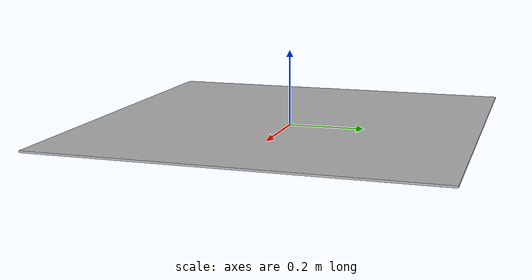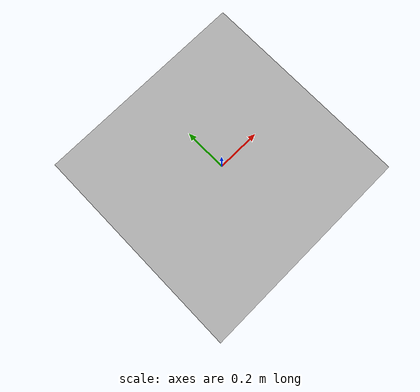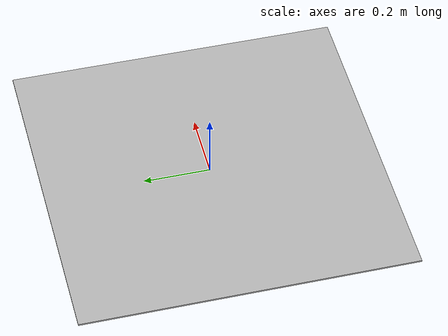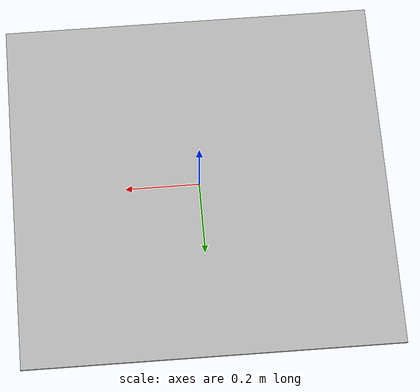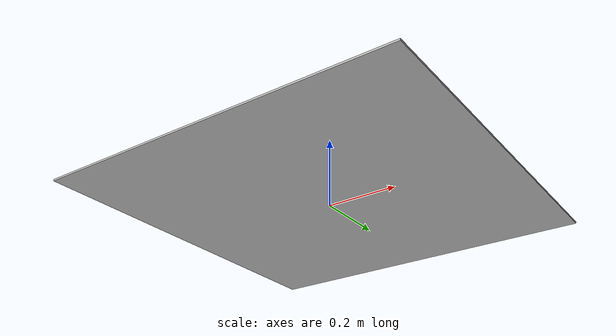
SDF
<?xml version='1.0'?>
<sdf version='1.4'>
  <model name="apriltag_board_v2_3">
    <link name='link'>
      <pose>0 0 0.01 0 0 0</pose>
      <inertial>
        <mass>1.00</mass>
        <inertia>
          <ixx>0.58</ixx>
          <ixy>0</ixy>
          <ixz>0</ixz>
          <iyy>0.58</iyy>
          <iyz>0</iyz>
          <izz>0.19</izz>
        </inertia>
      </inertial>
      <collision name='collision'>
        <geometry>
                <box>
                  <size>1.0 1.0 .005</size>
                </box>
        </geometry>
      </collision>

      <visual name='visual'>
        <geometry>
                <box>
                  <size>1.0 1.0 .005</size>
                </box>
        </geometry>

        <material>
          <script>
            <uri>model://apriltag_board_v2_3/materials/scripts</uri>
            <uri>model://apriltag_board_v2_3/materials/textures</uri>
            <name>Mark/apriltag_board_v2_3</name>
          </script>
        </material>
      </visual>
    </link>
  </model>
</sdf>
